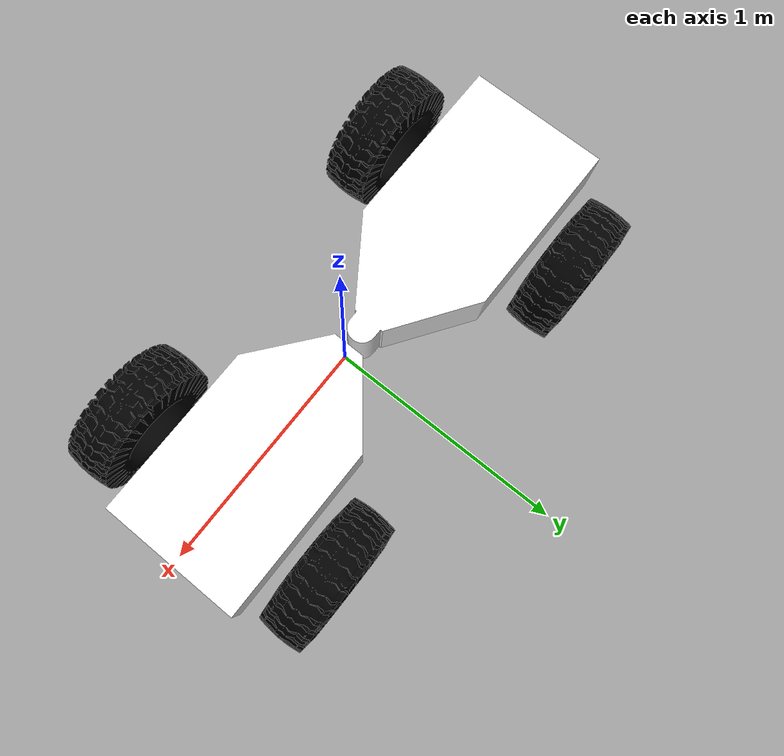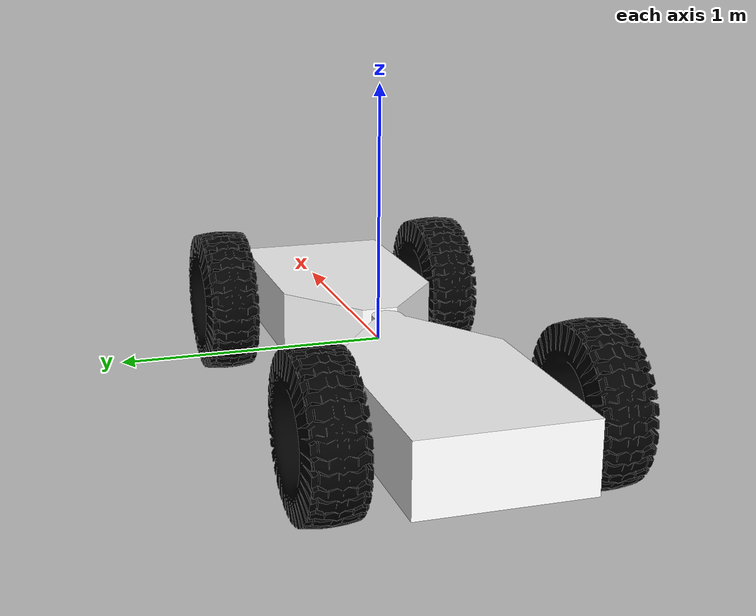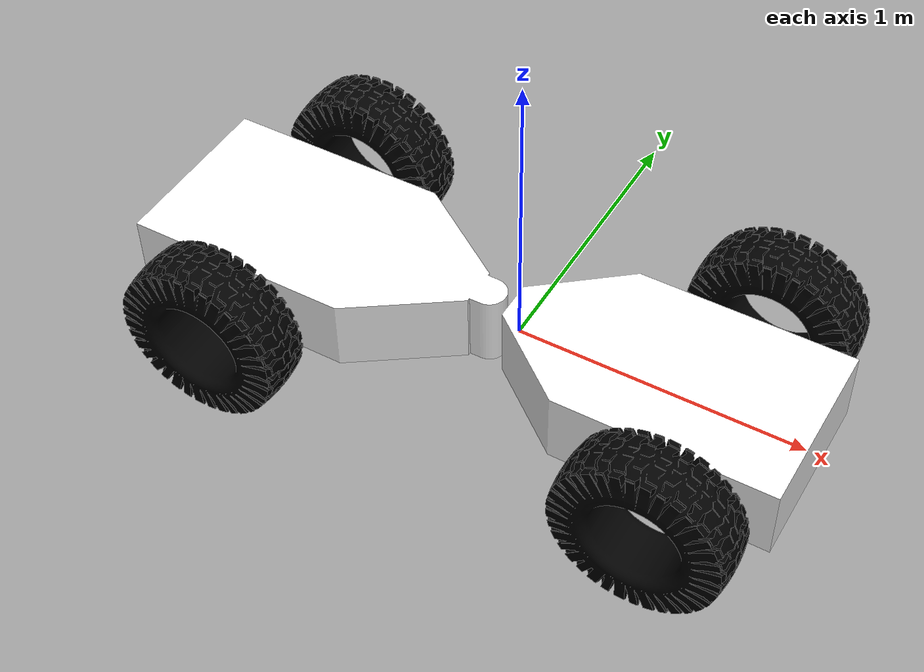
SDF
<sdf version='1.9'>
  <model name='wagon'>
    <link name='base_footprint'>
      <inertial>
        <pose>0.5528 0 0 0 0 0</pose>
        <mass>7.5</mass>
        <inertia>
          <ixx>0.048059999999999999</ixx>
          <ixy>0</ixy>
          <ixz>0</ixz>
          <iyy>0.1193</iyy>
          <iyz>0</iyz>
          <izz>0.14929999999999979</izz>
        </inertia>
      </inertial>
      <collision name='base_footprint_fixed_joint_lump__base_link_collision'>
        <pose>0.5075 0 0 0 0 0</pose>
        <geometry>
          <box>
            <size>1.055 0.62 0.26</size>
          </box>
        </geometry>
      </collision>
      <visual name='base_footprint_fixed_joint_lump__base_link_visual'>
        <pose>0.6948 0 0 0 0 1.57</pose>
        <geometry>
          <mesh>
            <scale>0.001 0.001 0.001</scale>
            <uri>/home/daniel/master_ws/install/wagon_description/share/wagon_description/meshes/bases/Simplified_Front_Centered.stl</uri>
          </mesh>
        </geometry>
        <material>
          <diffuse>1 1 1 1</diffuse>
          <ambient>1 1 1 1</ambient>
        </material>
      </visual>
    </link>
    <joint name='hydrolic_joint' type='revolute'>
      <pose relative_to='base_footprint'>-0.08499999999999996 0 0 0 0 0</pose>
      <parent>base_footprint</parent>
      <child>hydrolic_link</child>
      <axis>
        <xyz>0 0 1</xyz>
        <limit>
          <lower>-0.55000000000000004</lower>
          <upper>0.55000000000000004</upper>
          <effort>1000</effort>
          <velocity>0.5</velocity>
        </limit>
        <dynamics>
          <spring_reference>0</spring_reference>
          <spring_stiffness>0</spring_stiffness>
        </dynamics>
      </axis>
    </joint>
    <link name='hydrolic_link'>
      <pose relative_to='hydrolic_joint'>0 0 0 0 0 0</pose>
      <inertial>
        <pose>-0.9286000000000001 0 0 0 0 0</pose>
        <mass>7.5</mass>
        <inertia>
          <ixx>0.048059999999999999</ixx>
          <ixy>0</ixy>
          <ixz>0</ixz>
          <iyy>0.1193</iyy>
          <iyz>0</iyz>
          <izz>0.14930000000000021</izz>
        </inertia>
      </inertial>
      <collision name='hydrolic_link_fixed_joint_lump__rear_link_collision'>
        <pose>-0.6966000000000001 0 0 0 0 0</pose>
        <geometry>
          <box>
            <size>1.02 0.62 0.26</size>
          </box>
        </geometry>
      </collision>
      <visual name='hydrolic_link_fixed_joint_lump__rear_link_visual'>
        <pose>-0.7866000000000001 0 0 0 0 1.57</pose>
        <geometry>
          <mesh>
            <scale>0.001 0.001 0.001</scale>
            <uri>/home/daniel/master_ws/install/wagon_description/share/wagon_description/meshes/bases/Simplified_Back_Centered.stl</uri>
          </mesh>
        </geometry>
        <material>
          <diffuse>1 1 1 1</diffuse>
          <ambient>1 1 1 1</ambient>
        </material>
      </visual>
    </link>
    <joint name='wheel_rear_left_joint' type='revolute'>
      <pose relative_to='hydrolic_link'>-0.7866000000000001 0.4815 0 0 0 0</pose>
      <parent>hydrolic_link</parent>
      <child>wheel_rear_left_link</child>
      <axis>
        <xyz>0 1 0</xyz>
        <limit>
          <lower>-10000000000000000</lower>
          <upper>10000000000000000</upper>
        </limit>
        <dynamics>
          <spring_reference>0</spring_reference>
          <spring_stiffness>0</spring_stiffness>
        </dynamics>
      </axis>
    </joint>
    <link name='wheel_rear_left_link'>
      <pose relative_to='wheel_rear_left_joint'>0 0 0 0 0 0</pose>
      <inertial>
        <pose>0 0 0 1.57 0 0</pose>
        <mass>1.5249999999999999</mass>
        <inertia>
          <ixx>0.0067229999999999998</ixx>
          <ixy>0</ixy>
          <ixz>0</ixz>
          <iyy>0.0067229999999999998</iyy>
          <iyz>0</iyz>
          <izz>0.012200000000000001</izz>
        </inertia>
      </inertial>
      <collision name='wheel_rear_left_link_collision'>
        <pose>0 0 0 1.57 0 0</pose>
        <geometry>
          <cylinder>
            <length>0.215</length>
            <radius>0.29399999999999998</radius>
          </cylinder>
        </geometry>
      </collision>
      <visual name='wheel_rear_left_link_visual'>
        <pose>0 0 0 1.57 0 0</pose>
        <geometry>
          <mesh>
            <scale>0.001 0.001 0.001</scale>
            <uri>/home/daniel/master_ws/install/wagon_description/share/wagon_description/meshes/wheels/Wheel.stl</uri>
          </mesh>
        </geometry>
        <material>
          <diffuse>0 0 0 1</diffuse>
          <ambient>0 0 0 1</ambient>
        </material>
      </visual>
    </link>
    <joint name='wheel_rear_right_joint' type='revolute'>
      <pose relative_to='hydrolic_link'>-0.7866000000000001 -0.4815 0 0 0 0</pose>
      <parent>hydrolic_link</parent>
      <child>wheel_rear_right_link</child>
      <axis>
        <xyz>0 1 0</xyz>
        <limit>
          <lower>-10000000000000000</lower>
          <upper>10000000000000000</upper>
        </limit>
        <dynamics>
          <spring_reference>0</spring_reference>
          <spring_stiffness>0</spring_stiffness>
        </dynamics>
      </axis>
    </joint>
    <link name='wheel_rear_right_link'>
      <pose relative_to='wheel_rear_right_joint'>0 0 0 0 0 0</pose>
      <inertial>
        <pose>0 0 0 1.57 0 0</pose>
        <mass>1.5249999999999999</mass>
        <inertia>
          <ixx>0.0067229999999999998</ixx>
          <ixy>0</ixy>
          <ixz>0</ixz>
          <iyy>0.0067229999999999998</iyy>
          <iyz>0</iyz>
          <izz>0.012200000000000001</izz>
        </inertia>
      </inertial>
      <collision name='wheel_rear_right_link_collision'>
        <pose>0 0 0 1.57 0 0</pose>
        <geometry>
          <cylinder>
            <length>0.215</length>
            <radius>0.29399999999999998</radius>
          </cylinder>
        </geometry>
      </collision>
      <visual name='wheel_rear_right_link_visual'>
        <pose>0 0 0 1.57 0 0</pose>
        <geometry>
          <mesh>
            <scale>0.001 0.001 0.001</scale>
            <uri>/home/daniel/master_ws/install/wagon_description/share/wagon_description/meshes/wheels/Wheel.stl</uri>
          </mesh>
        </geometry>
        <material>
          <diffuse>0 0 0 1</diffuse>
          <ambient>0 0 0 1</ambient>
        </material>
      </visual>
    </link>
    <joint name='wheel_front_left_joint' type='revolute'>
      <pose relative_to='base_footprint'>0.6948 0.4815 0 0 0 0</pose>
      <parent>base_footprint</parent>
      <child>wheel_front_left_link</child>
      <axis>
        <xyz>0 1 0</xyz>
        <limit>
          <lower>-10000000000000000</lower>
          <upper>10000000000000000</upper>
        </limit>
        <dynamics>
          <spring_reference>0</spring_reference>
          <spring_stiffness>0</spring_stiffness>
        </dynamics>
      </axis>
    </joint>
    <link name='wheel_front_left_link'>
      <pose relative_to='wheel_front_left_joint'>0 0 0 0 0 0</pose>
      <inertial>
        <pose>0 0 0 1.57 0 0</pose>
        <mass>1.5249999999999999</mass>
        <inertia>
          <ixx>0.0067229999999999998</ixx>
          <ixy>0</ixy>
          <ixz>0</ixz>
          <iyy>0.0067229999999999998</iyy>
          <iyz>0</iyz>
          <izz>0.012200000000000001</izz>
        </inertia>
      </inertial>
      <collision name='wheel_front_left_link_collision'>
        <pose>0 0 0 1.57 0 0</pose>
        <geometry>
          <cylinder>
            <length>0.215</length>
            <radius>0.29399999999999998</radius>
          </cylinder>
        </geometry>
      </collision>
      <visual name='wheel_front_left_link_visual'>
        <pose>0 0 0 1.57 0 0</pose>
        <geometry>
          <mesh>
            <scale>0.001 0.001 0.001</scale>
            <uri>/home/daniel/master_ws/install/wagon_description/share/wagon_description/meshes/wheels/Wheel.stl</uri>
          </mesh>
        </geometry>
        <material>
          <diffuse>0 0 0 1</diffuse>
          <ambient>0 0 0 1</ambient>
        </material>
      </visual>
    </link>
    <joint name='wheel_front_right_joint' type='revolute'>
      <pose relative_to='base_footprint'>0.6948 -0.4815 0 0 0 0</pose>
      <parent>base_footprint</parent>
      <child>wheel_front_right_link</child>
      <axis>
        <xyz>0 1 0</xyz>
        <limit>
          <lower>-10000000000000000</lower>
          <upper>10000000000000000</upper>
        </limit>
        <dynamics>
          <spring_reference>0</spring_reference>
          <spring_stiffness>0</spring_stiffness>
        </dynamics>
      </axis>
    </joint>
    <link name='wheel_front_right_link'>
      <pose relative_to='wheel_front_right_joint'>0 0 0 0 0 0</pose>
      <inertial>
        <pose>0 0 0 1.57 0 0</pose>
        <mass>1.5249999999999999</mass>
        <inertia>
          <ixx>0.0067229999999999998</ixx>
          <ixy>0</ixy>
          <ixz>0</ixz>
          <iyy>0.0067229999999999998</iyy>
          <iyz>0</iyz>
          <izz>0.012200000000000001</izz>
        </inertia>
      </inertial>
      <collision name='wheel_front_right_link_collision'>
        <pose>0 0 0 1.57 0 0</pose>
        <geometry>
          <cylinder>
            <length>0.215</length>
            <radius>0.29199999999999998</radius>
          </cylinder>
        </geometry>
      </collision>
      <visual name='wheel_front_right_link_visual'>
        <pose>0 0 0 1.57 0 0</pose>
        <geometry>
          <mesh>
            <scale>0.001 0.001 0.001</scale>
            <uri>/home/daniel/master_ws/install/wagon_description/share/wagon_description/meshes/wheels/Wheel.stl</uri>
          </mesh>
        </geometry>
        <material>
          <diffuse>0 0 0 1</diffuse>
          <ambient>0 0 0 1</ambient>
        </material>
      </visual>
    </link>
    <plugin
        filename="ignition-gazebo-joint-state-publisher-system"
        name="ignition::gazebo::systems::JointStatePublisher">
      </plugin>

      <plugin
        filename="ignition-gazebo-pose-publisher-system"
        name="ignition::gazebo::systems::PosePublisher">
        <publish_link_pose>true</publish_link_pose>

        <use_pose_vector_msg>true</use_pose_vector_msg>
      </plugin>
  </model>
</sdf>
